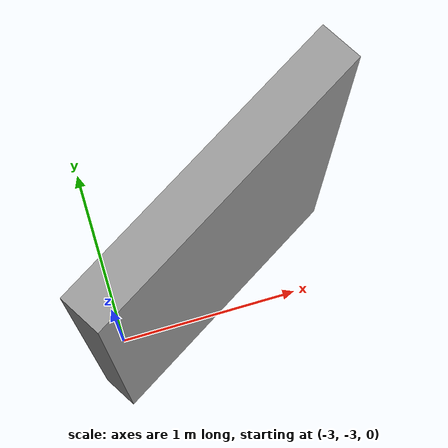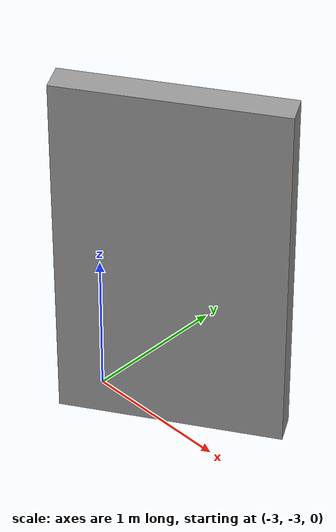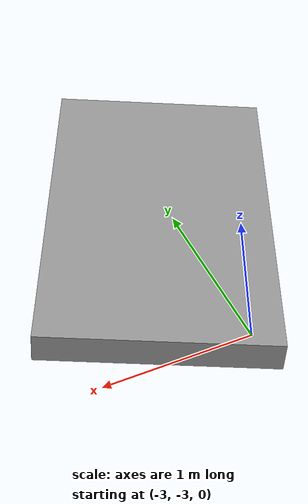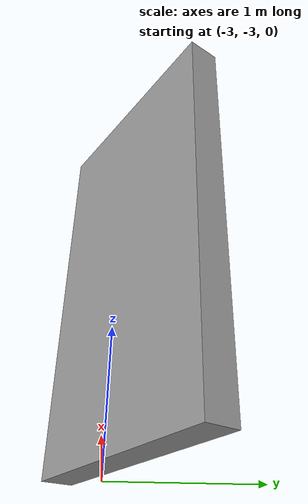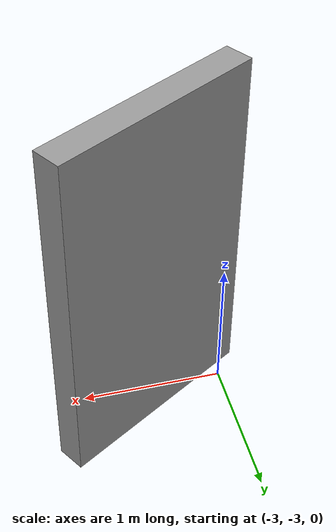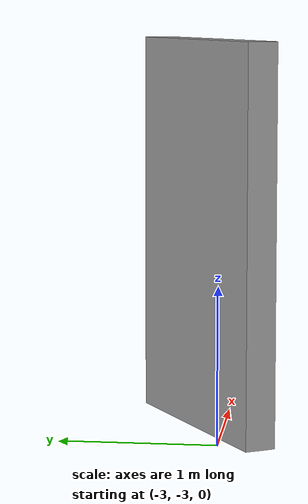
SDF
<?xml version='1.0'?>
<sdf version='1.4'>
  <model name='wallworld'>
    <link name='Wall_0'>
      <collision name='Wall_0_Collision'>
        <geometry>
          <box>
            <size>1.5051 0.2 2.5</size>
          </box>
        </geometry>
        <pose>0 0 1.25 0 -0 0</pose>
      </collision>
      <visual name='Wall_0_Visual'>
        <pose>0 0 1.25 0 -0 0</pose>
        <geometry>
          <box>
            <size>1.5051 0.2 2.5</size>
          </box>
        </geometry>
        <material>
          <script>
            <uri>file://media/materials/scripts/gazebo.material</uri>
            <name>Gazebo/Grey</name>
          </script>
        </material>
      </visual>
      <velocity_decay>
        <linear>0</linear>
        <angular>0</angular>
      </velocity_decay>
      <pose>-2.45 -2.885 0 0 -0 0.539105</pose>
    </link>
    <static>1</static>
  </model>
</sdf>
